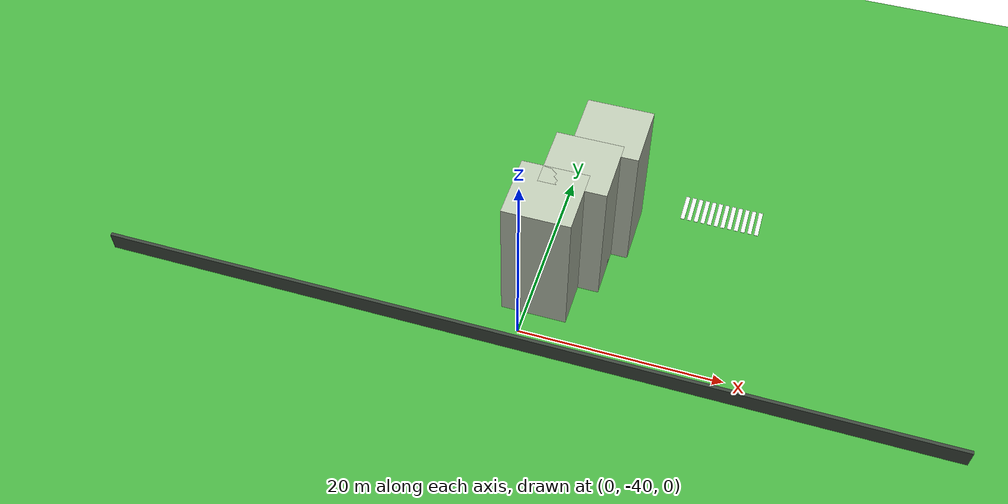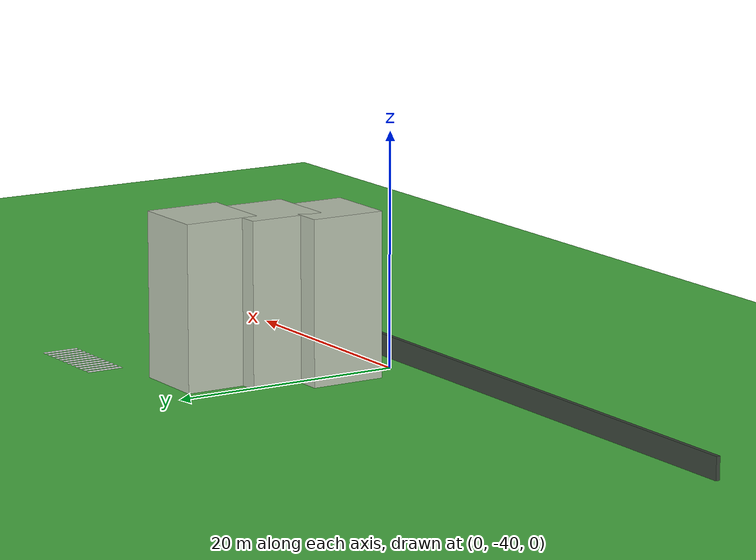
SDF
<sdf version="1.10">
 <world name="city_second">
  <model name="ground_plane">
   <static>true</static>
   <link name="link">
    <collision name="collision">
     <geometry><plane><normal>0 0 1</normal><size>300 300</size></plane></geometry>
    </collision>
    <visual name="visual">
     <geometry><plane><normal>0 0 1</normal><size>300 300</size></plane></geometry>
     <material>
      <ambient>0.280000001 0.689999998 0.25999999 1</ambient>
      <diffuse>0.280000001 0.689999998 0.25999999 1</diffuse>
      <specular>0.0299999993 0.0299999993 0.0299999993 1</specular>
     </material>
    </visual>
    <inertial>
     <mass>1</mass>
     <inertia><ixx>1</ixx><ixy>0</ixy><ixz>0</ixz><iyy>1</iyy><iyz>0</iyz><izz>1</izz></inertia>
    </inertial>
   </link>
  </model>
  <model name="house_1_2">
   <static>true</static>
   <pose>4.5999999999999996 -24.800000000000001 7 0 0 0</pose>
   <link name="link">
    <collision name="collision"><geometry><box><size>6.5 6.5 14</size></box></geometry></collision>
    <visual name="visual">
     <geometry><box><size>6.5 6.5 14</size></box></geometry>
     <material>
      <ambient>0.730000019 0.769999981 0.689999998 1</ambient>
      <diffuse>0.730000019 0.769999981 0.689999998 1</diffuse>
      <specular>0.0299999993 0.0299999993 0.0299999993 1</specular>
     </material>
    </visual>
    <inertial>
     <mass>1</mass>
     <inertia><ixx>1</ixx><ixy>0</ixy><ixz>0</ixz><iyy>1</iyy><iyz>0</iyz><izz>1</izz></inertia>
    </inertial>
   </link>
  </model>
  <model name="fence_south">
   <static>true</static>
   <pose>0 -42 0.94999999999999996 0 0 0</pose>
   <link name="link">
    <collision name="collision">
     <geometry><box><size>84.5 0.34999999999999998 1.8999999999999999</size></box></geometry>
    </collision>
    <visual name="visual">
     <geometry><box><size>84.5 0.34999999999999998 1.8999999999999999</size></box></geometry>
     <material>
      <ambient>0.230000004 0.270000011 0.230000004 1</ambient>
      <diffuse>0.230000004 0.270000011 0.230000004 1</diffuse>
      <specular>0.0299999993 0.0299999993 0.0299999993 1</specular>
     </material>
    </visual>
    <inertial>
     <mass>1</mass>
     <inertia><ixx>1</ixx><ixy>0</ixy><ixz>0</ixz><iyy>1</iyy><iyz>0</iyz><izz>1</izz></inertia>
    </inertial>
   </link>
  </model>
  <model name="house_1_2_1">
   <static>true</static>
   <pose>2.9261599999999999 -29.924299999999999 7 0 0 0</pose>
   <link name="link">
    <collision name="collision"><geometry><box><size>6.5 6.5 14</size></box></geometry></collision>
    <visual name="visual">
     <geometry><box><size>6.5 6.5 14</size></box></geometry>
     <material>
      <ambient>0.730000019 0.769999981 0.689999998 1</ambient>
      <diffuse>0.730000019 0.769999981 0.689999998 1</diffuse>
      <specular>0.0299999993 0.0299999993 0.0299999993 1</specular>
     </material>
    </visual>
    <inertial>
     <mass>1</mass>
     <inertia><ixx>1</ixx><ixy>0</ixy><ixz>0</ixz><iyy>1</iyy><iyz>0</iyz><izz>1</izz></inertia>
    </inertial>
   </link>
  </model>
  <model name="house_1_2_2">
   <static>true</static>
   <pose>0.84303399999999995 -34.430599999999998 7 0 0 0</pose>
   <link name="link">
    <collision name="collision"><geometry><box><size>6.5 6.5 14</size></box></geometry></collision>
    <visual name="visual">
     <geometry><box><size>6.5 6.5 14</size></box></geometry>
     <material>
      <ambient>0.730000019 0.769999981 0.689999998 1</ambient>
      <diffuse>0.730000019 0.769999981 0.689999998 1</diffuse>
      <specular>0.0299999993 0.0299999993 0.0299999993 1</specular>
     </material>
    </visual>
    <inertial>
     <mass>1</mass>
     <inertia><ixx>1</ixx><ixy>0</ixy><ixz>0</ixz><iyy>1</iyy><iyz>0</iyz><izz>1</izz></inertia>
    </inertial>
   </link>
  </model>
  <model name="crosswalk_h_1_1_south_7_2">
   <static>true</static>
   <pose>15.9618 -19.652999999999999 0.017000000000000001 0 0 0</pose>
   <link name="stripe_1">
    <collision name="collision">
     <geometry><box><size>0.41999999999999998 3.2000000000000002 0.01</size></box></geometry>
    </collision>
    <visual name="visual">
     <geometry><box><size>0.41999999999999998 3.2000000000000002 0.01</size></box></geometry>
     <material>
      <ambient>0.920000017 0.920000017 0.930000007 1</ambient>
      <diffuse>0.920000017 0.920000017 0.930000007 1</diffuse>
      <specular>0.0299999993 0.0299999993 0.0299999993 1</specular>
     </material>
    </visual>
    <pose>-3.8500000000000001 0 0 0 0 0</pose>
    <inertial>
     <mass>1</mass>
     <inertia><ixx>1</ixx><ixy>0</ixy><ixz>0</ixz><iyy>1</iyy><iyz>0</iyz><izz>1</izz></inertia>
    </inertial>
   </link>
   <link name="stripe_2">
    <collision name="collision">
     <geometry><box><size>0.41999999999999998 3.2000000000000002 0.01</size></box></geometry>
    </collision>
    <visual name="visual">
     <geometry><box><size>0.41999999999999998 3.2000000000000002 0.01</size></box></geometry>
     <material>
      <ambient>0.920000017 0.920000017 0.930000007 1</ambient>
      <diffuse>0.920000017 0.920000017 0.930000007 1</diffuse>
      <specular>0.0299999993 0.0299999993 0.0299999993 1</specular>
     </material>
    </visual>
    <pose>-3.1500000000000004 0 0 0 0 0</pose>
    <inertial>
     <mass>1</mass>
     <inertia><ixx>1</ixx><ixy>0</ixy><ixz>0</ixz><iyy>1</iyy><iyz>0</iyz><izz>1</izz></inertia>
    </inertial>
   </link>
   <link name="stripe_3">
    <collision name="collision">
     <geometry><box><size>0.41999999999999998 3.2000000000000002 0.01</size></box></geometry>
    </collision>
    <visual name="visual">
     <geometry><box><size>0.41999999999999998 3.2000000000000002 0.01</size></box></geometry>
     <material>
      <ambient>0.920000017 0.920000017 0.930000007 1</ambient>
      <diffuse>0.920000017 0.920000017 0.930000007 1</diffuse>
      <specular>0.0299999993 0.0299999993 0.0299999993 1</specular>
     </material>
    </visual>
    <pose>-2.4499999999999993 0 0 0 0 0</pose>
    <inertial>
     <mass>1</mass>
     <inertia><ixx>1</ixx><ixy>0</ixy><ixz>0</ixz><iyy>1</iyy><iyz>0</iyz><izz>1</izz></inertia>
    </inertial>
   </link>
   <link name="stripe_4">
    <collision name="collision">
     <geometry><box><size>0.41999999999999998 3.2000000000000002 0.01</size></box></geometry>
    </collision>
    <visual name="visual">
     <geometry><box><size>0.41999999999999998 3.2000000000000002 0.01</size></box></geometry>
     <material>
      <ambient>0.920000017 0.920000017 0.930000007 1</ambient>
      <diffuse>0.920000017 0.920000017 0.930000007 1</diffuse>
      <specular>0.0299999993 0.0299999993 0.0299999993 1</specular>
     </material>
    </visual>
    <pose>-1.75 0 0 0 0 0</pose>
    <inertial>
     <mass>1</mass>
     <inertia><ixx>1</ixx><ixy>0</ixy><ixz>0</ixz><iyy>1</iyy><iyz>0</iyz><izz>1</izz></inertia>
    </inertial>
   </link>
   <link name="stripe_5">
    <collision name="collision">
     <geometry><box><size>0.41999999999999998 3.2000000000000002 0.01</size></box></geometry>
    </collision>
    <visual name="visual">
     <geometry><box><size>0.41999999999999998 3.2000000000000002 0.01</size></box></geometry>
     <material>
      <ambient>0.920000017 0.920000017 0.930000007 1</ambient>
      <diffuse>0.920000017 0.920000017 0.930000007 1</diffuse>
      <specular>0.0299999993 0.0299999993 0.0299999993 1</specular>
     </material>
    </visual>
    <pose>-1.0500000000000007 0 0 0 0 0</pose>
    <inertial>
     <mass>1</mass>
     <inertia><ixx>1</ixx><ixy>0</ixy><ixz>0</ixz><iyy>1</iyy><iyz>0</iyz><izz>1</izz></inertia>
    </inertial>
   </link>
   <link name="stripe_6">
    <collision name="collision">
     <geometry><box><size>0.41999999999999998 3.2000000000000002 0.01</size></box></geometry>
    </collision>
    <visual name="visual">
     <geometry><box><size>0.41999999999999998 3.2000000000000002 0.01</size></box></geometry>
     <material>
      <ambient>0.920000017 0.920000017 0.930000007 1</ambient>
      <diffuse>0.920000017 0.920000017 0.930000007 1</diffuse>
      <specular>0.0299999993 0.0299999993 0.0299999993 1</specular>
     </material>
    </visual>
    <pose>-0.34999999999999964 0 0 0 0 0</pose>
    <inertial>
     <mass>1</mass>
     <inertia><ixx>1</ixx><ixy>0</ixy><ixz>0</ixz><iyy>1</iyy><iyz>0</iyz><izz>1</izz></inertia>
    </inertial>
   </link>
   <link name="stripe_7">
    <collision name="collision">
     <geometry><box><size>0.41999999999999998 3.2000000000000002 0.01</size></box></geometry>
    </collision>
    <visual name="visual">
     <geometry><box><size>0.41999999999999998 3.2000000000000002 0.01</size></box></geometry>
     <material>
      <ambient>0.920000017 0.920000017 0.930000007 1</ambient>
      <diffuse>0.920000017 0.920000017 0.930000007 1</diffuse>
      <specular>0.0299999993 0.0299999993 0.0299999993 1</specular>
     </material>
    </visual>
    <pose>0.35000000000000142 0 0 0 0 0</pose>
    <inertial>
     <mass>1</mass>
     <inertia><ixx>1</ixx><ixy>0</ixy><ixz>0</ixz><iyy>1</iyy><iyz>0</iyz><izz>1</izz></inertia>
    </inertial>
   </link>
   <link name="stripe_8">
    <collision name="collision">
     <geometry><box><size>0.41999999999999998 3.2000000000000002 0.01</size></box></geometry>
    </collision>
    <visual name="visual">
     <geometry><box><size>0.41999999999999998 3.2000000000000002 0.01</size></box></geometry>
     <material>
      <ambient>0.920000017 0.920000017 0.930000007 1</ambient>
      <diffuse>0.920000017 0.920000017 0.930000007 1</diffuse>
      <specular>0.0299999993 0.0299999993 0.0299999993 1</specular>
     </material>
    </visual>
    <pose>1.0500000000000007 0 0 0 0 0</pose>
    <inertial>
     <mass>1</mass>
     <inertia><ixx>1</ixx><ixy>0</ixy><ixz>0</ixz><iyy>1</iyy><iyz>0</iyz><izz>1</izz></inertia>
    </inertial>
   </link>
   <link name="stripe_9">
    <collision name="collision">
     <geometry><box><size>0.41999999999999998 3.2000000000000002 0.01</size></box></geometry>
    </collision>
    <visual name="visual">
     <geometry><box><size>0.41999999999999998 3.2000000000000002 0.01</size></box></geometry>
     <material>
      <ambient>0.920000017 0.920000017 0.930000007 1</ambient>
      <diffuse>0.920000017 0.920000017 0.930000007 1</diffuse>
      <specular>0.0299999993 0.0299999993 0.0299999993 1</specular>
     </material>
    </visual>
    <pose>1.75 0 0 0 0 0</pose>
    <inertial>
     <mass>1</mass>
     <inertia><ixx>1</ixx><ixy>0</ixy><ixz>0</ixz><iyy>1</iyy><iyz>0</iyz><izz>1</izz></inertia>
    </inertial>
   </link>
   <link name="stripe_10">
    <collision name="collision">
     <geometry><box><size>0.41999999999999998 3.2000000000000002 0.01</size></box></geometry>
    </collision>
    <visual name="visual">
     <geometry><box><size>0.41999999999999998 3.2000000000000002 0.01</size></box></geometry>
     <material>
      <ambient>0.920000017 0.920000017 0.930000007 1</ambient>
      <diffuse>0.920000017 0.920000017 0.930000007 1</diffuse>
      <specular>0.0299999993 0.0299999993 0.0299999993 1</specular>
     </material>
    </visual>
    <pose>2.4499999999999993 0 0 0 0 0</pose>
    <inertial>
     <mass>1</mass>
     <inertia><ixx>1</ixx><ixy>0</ixy><ixz>0</ixz><iyy>1</iyy><iyz>0</iyz><izz>1</izz></inertia>
    </inertial>
   </link>
   <link name="stripe_11">
    <collision name="collision">
     <geometry><box><size>0.41999999999999998 3.2000000000000002 0.01</size></box></geometry>
    </collision>
    <visual name="visual">
     <geometry><box><size>0.41999999999999998 3.2000000000000002 0.01</size></box></geometry>
     <material>
      <ambient>0.920000017 0.920000017 0.930000007 1</ambient>
      <diffuse>0.920000017 0.920000017 0.930000007 1</diffuse>
      <specular>0.0299999993 0.0299999993 0.0299999993 1</specular>
     </material>
    </visual>
    <pose>3.1499999999999986 0 0 0 0 0</pose>
    <inertial>
     <mass>1</mass>
     <inertia><ixx>1</ixx><ixy>0</ixy><ixz>0</ixz><iyy>1</iyy><iyz>0</iyz><izz>1</izz></inertia>
    </inertial>
   </link>
   <link name="stripe_12">
    <collision name="collision">
     <geometry><box><size>0.41999999999999998 3.2000000000000002 0.01</size></box></geometry>
    </collision>
    <visual name="visual">
     <geometry><box><size>0.41999999999999998 3.2000000000000002 0.01</size></box></geometry>
     <material>
      <ambient>0.920000017 0.920000017 0.930000007 1</ambient>
      <diffuse>0.920000017 0.920000017 0.930000007 1</diffuse>
      <specular>0.0299999993 0.0299999993 0.0299999993 1</specular>
     </material>
    </visual>
    <pose>3.8500000000000014 0 0 0 0 0</pose>
    <inertial>
     <mass>1</mass>
     <inertia><ixx>1</ixx><ixy>0</ixy><ixz>0</ixz><iyy>1</iyy><iyz>0</iyz><izz>1</izz></inertia>
    </inertial>
   </link>
  </model>
  <model name="Apriltag36_11_00000_2">
   <link name="link">
    <inertial>
     <mass>0.5</mass>
     <inertia><ixx>0.0001</ixx><ixy>0</ixy><ixz>0</ixz><iyy>0.0001</iyy><iyz>0</iyz><izz>0.0001</izz></inertia>
    </inertial>
    <collision name="collision">
     <geometry>
      <mesh><uri>model://Apriltag36_11_00000/meshes/tag36_11_00000.dae</uri><scale>1.25 1.25 1</scale></mesh>
     </geometry>
     <surface>
      <friction><ode><mu>1</mu><mu2>1</mu2></ode></friction>
      <contact>
       <ode><kp>10000000</kp><kd>1</kd><min_depth>0.001</min_depth><max_vel>0.10000000000000001</max_vel></ode>
      </contact>
     </surface>
    </collision>
    <visual name="visual">
     <geometry>
      <mesh><uri>filemodel://Apriltag36_11_00000/meshes/tag36_11_00000.dae</uri><scale>1.25 1.25 1</scale></mesh>
     </geometry>
    </visual>
   </link>
   <pose>6.184150218963623 -29.442899703979492 0.34999999403953552 3.1374610045757594 1.5707927022884467 3.1415455296145063</pose>
   <static>true</static>
  </model>
 </world>
</sdf>
